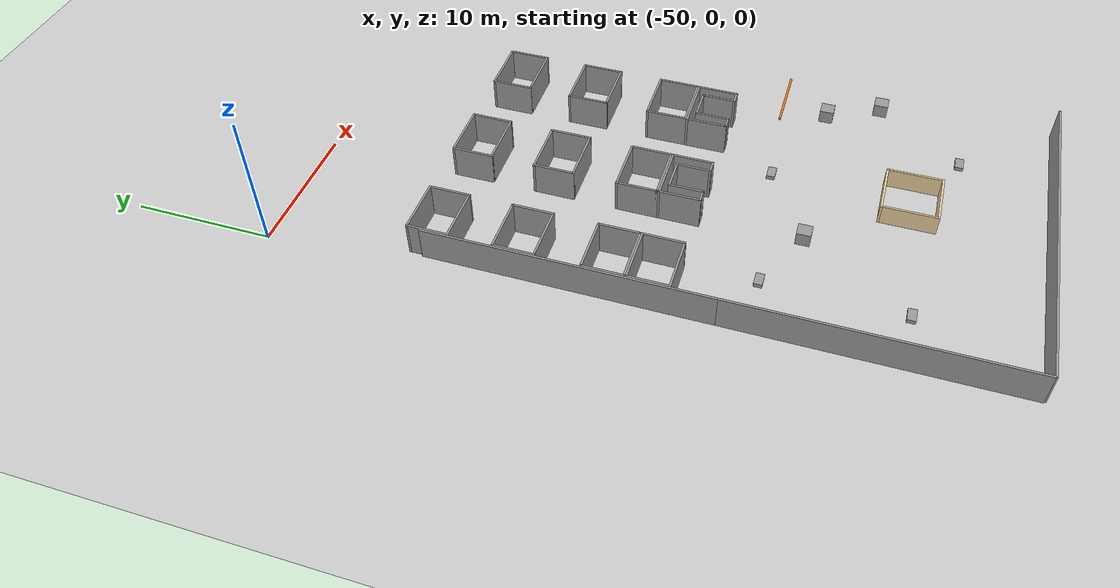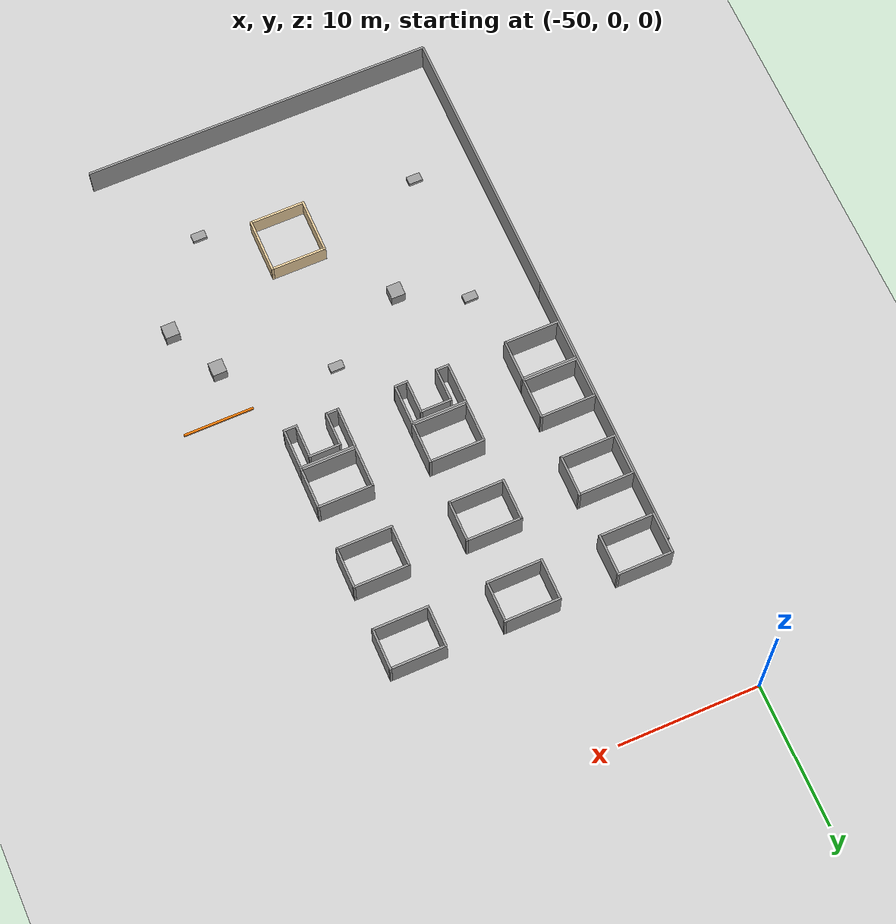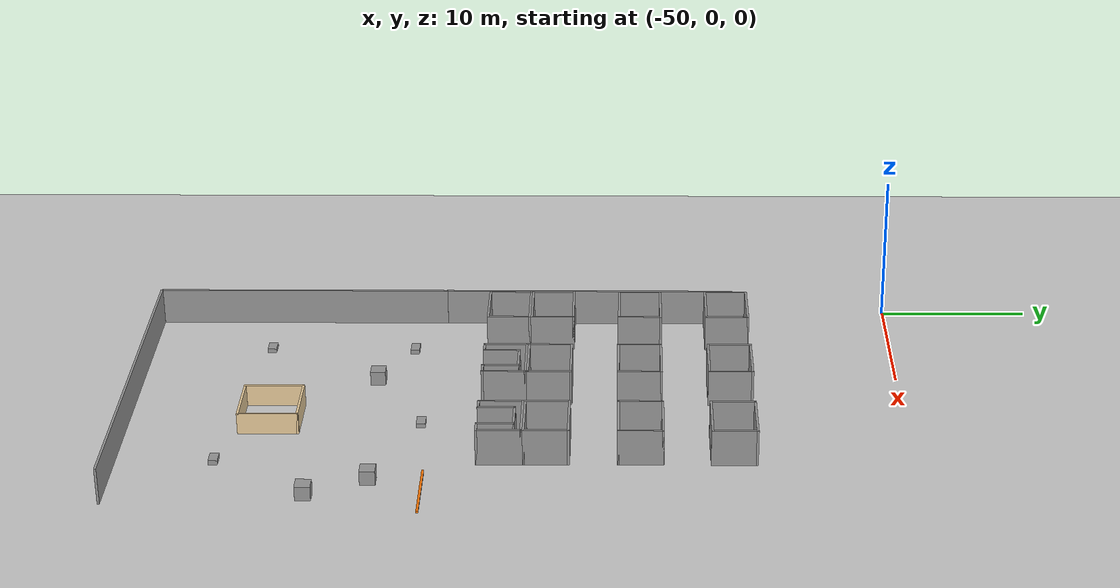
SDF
<sdf version="1.6">
 <world name="default">
  <model name="ground_plane">
   <static>1</static>
   <link name="link">
    <collision name="collision">
     <geometry><plane><normal>0 0 1</normal><size>105 105</size></plane></geometry>
     <surface>
      <contact><collide_bitmask>65535</collide_bitmask></contact>
      <friction><ode><mu>100</mu><mu2>50</mu2></ode></friction>
     </surface>
    </collision>
    <visual name="visual">
     <cast_shadows>0</cast_shadows>
     <geometry><plane><normal>0 0 1</normal><size>105 105</size></plane></geometry>
     <material>
      <script><uri>file://media/materials/scripts/gazebo.material</uri><name>Gazebo/Grey</name></script>
     </material>
    </visual>
   </link>
  </model>
  <model name="wall_v20m">
   <pose>-48.4198 -20.7165 0 0 -0 0</pose>
   <link name="Wall_35">
    <collision name="Wall_35_Collision">
     <geometry><box><size>20 0.15 2.5</size></box></geometry>
     <pose>0 0 1.25 0 -0 0</pose>
    </collision>
    <visual name="Wall_35_Visual">
     <pose>0 0 1.25 0 -0 0</pose>
     <geometry><box><size>20 0.15 2.5</size></box></geometry>
     <material>
      <script><uri>file://media/materials/scripts/gazebo.material</uri><name>Gazebo/Grey</name></script>
      <ambient>1 1 1 1</ambient>
     </material>
     <meta><layer>0</layer></meta>
    </visual>
    <pose>0 -0 0 0 -0 -1.5708</pose>
   </link>
   <static>1</static>
  </model>
  <model name="base3x4_26">
   <pose>-46.3516 -23.2162 0 0 -0 0</pose>
   <link name="Wall_18">
    <collision name="Wall_18_Collision">
     <geometry><box><size>3 0.15 2.5</size></box></geometry>
     <pose>0 0 1.25 0 -0 0</pose>
    </collision>
    <visual name="Wall_18_Visual">
     <pose>0 0 1.25 0 -0 0</pose>
     <geometry><box><size>3 0.15 2.5</size></box></geometry>
     <material>
      <script><uri>file://media/materials/scripts/gazebo.material</uri><name>Gazebo/Grey</name></script>
      <ambient>1 1 1 1</ambient>
     </material>
     <meta><layer>0</layer></meta>
    </visual>
    <pose>-1.925 -0 0 0 -0 -1.5708</pose>
   </link>
   <link name="Wall_19">
    <collision name="Wall_19_Collision">
     <geometry><box><size>4 0.15 2.5</size></box></geometry>
     <pose>0 0 1.25 0 -0 0</pose>
    </collision>
    <visual name="Wall_19_Visual">
     <pose>0 0 1.25 0 -0 0</pose>
     <geometry><box><size>4 0.15 2.5</size></box></geometry>
     <material>
      <script><uri>file://media/materials/scripts/gazebo.material</uri><name>Gazebo/Grey</name></script>
      <ambient>1 1 1 1</ambient>
     </material>
     <meta><layer>0</layer></meta>
    </visual>
    <pose>-0 -1.425 0 0 -0 0</pose>
   </link>
   <link name="Wall_20">
    <collision name="Wall_20_Collision">
     <geometry><box><size>3 0.15 2.5</size></box></geometry>
     <pose>0 0 1.25 0 -0 0</pose>
    </collision>
    <visual name="Wall_20_Visual">
     <pose>0 0 1.25 0 -0 0</pose>
     <geometry><box><size>3 0.15 2.5</size></box></geometry>
     <material>
      <script><uri>file://media/materials/scripts/gazebo.material</uri><name>Gazebo/Grey</name></script>
      <ambient>1 1 1 1</ambient>
     </material>
     <meta><layer>0</layer></meta>
    </visual>
    <pose>1.925 -0 0 0 -0 1.5708</pose>
   </link>
   <link name="Wall_21">
    <collision name="Wall_21_Collision">
     <geometry><box><size>4 0.15 2.5</size></box></geometry>
     <pose>0 0 1.25 0 -0 0</pose>
    </collision>
    <visual name="Wall_21_Visual">
     <pose>0 0 1.25 0 -0 0</pose>
     <geometry><box><size>4 0.15 2.5</size></box></geometry>
     <material>
      <script><uri>file://media/materials/scripts/gazebo.material</uri><name>Gazebo/Grey</name></script>
      <ambient>1 1 1 1</ambient>
     </material>
     <meta><layer>0</layer></meta>
    </visual>
    <pose>-0 1.425 0 0 -0 3.14159</pose>
   </link>
   <static>1</static>
  </model>
  <model name="base3x4_28">
   <pose>-46.3508 -17.215 0 0 -0 0</pose>
   <link name="Wall_18">
    <collision name="Wall_18_Collision">
     <geometry><box><size>3 0.15 2.5</size></box></geometry>
     <pose>0 0 1.25 0 -0 0</pose>
    </collision>
    <visual name="Wall_18_Visual">
     <pose>0 0 1.25 0 -0 0</pose>
     <geometry><box><size>3 0.15 2.5</size></box></geometry>
     <material>
      <script><uri>file://media/materials/scripts/gazebo.material</uri><name>Gazebo/Grey</name></script>
      <ambient>1 1 1 1</ambient>
     </material>
     <meta><layer>0</layer></meta>
    </visual>
    <pose>-1.925 -0 0 0 -0 -1.5708</pose>
   </link>
   <link name="Wall_19">
    <collision name="Wall_19_Collision">
     <geometry><box><size>4 0.15 2.5</size></box></geometry>
     <pose>0 0 1.25 0 -0 0</pose>
    </collision>
    <visual name="Wall_19_Visual">
     <pose>0 0 1.25 0 -0 0</pose>
     <geometry><box><size>4 0.15 2.5</size></box></geometry>
     <material>
      <script><uri>file://media/materials/scripts/gazebo.material</uri><name>Gazebo/Grey</name></script>
      <ambient>1 1 1 1</ambient>
     </material>
     <meta><layer>0</layer></meta>
    </visual>
    <pose>-0 -1.425 0 0 -0 0</pose>
   </link>
   <link name="Wall_20">
    <collision name="Wall_20_Collision">
     <geometry><box><size>3 0.15 2.5</size></box></geometry>
     <pose>0 0 1.25 0 -0 0</pose>
    </collision>
    <visual name="Wall_20_Visual">
     <pose>0 0 1.25 0 -0 0</pose>
     <geometry><box><size>3 0.15 2.5</size></box></geometry>
     <material>
      <script><uri>file://media/materials/scripts/gazebo.material</uri><name>Gazebo/Grey</name></script>
      <ambient>1 1 1 1</ambient>
     </material>
     <meta><layer>0</layer></meta>
    </visual>
    <pose>1.925 -0 0 0 -0 1.5708</pose>
   </link>
   <link name="Wall_21">
    <collision name="Wall_21_Collision">
     <geometry><box><size>4 0.15 2.5</size></box></geometry>
     <pose>0 0 1.25 0 -0 0</pose>
    </collision>
    <visual name="Wall_21_Visual">
     <pose>0 0 1.25 0 -0 0</pose>
     <geometry><box><size>4 0.15 2.5</size></box></geometry>
     <material>
      <script><uri>file://media/materials/scripts/gazebo.material</uri><name>Gazebo/Grey</name></script>
      <ambient>1 1 1 1</ambient>
     </material>
     <meta><layer>0</layer></meta>
    </visual>
    <pose>-0 1.425 0 0 -0 3.14159</pose>
   </link>
   <static>1</static>
  </model>
  <model name="base3x4_34">
   <pose>-38.3558 -23.2346 0 0 -0 0</pose>
   <link name="Wall_18">
    <collision name="Wall_18_Collision">
     <geometry><box><size>3 0.15 2.5</size></box></geometry>
     <pose>0 0 1.25 0 -0 0</pose>
    </collision>
    <visual name="Wall_18_Visual">
     <pose>0 0 1.25 0 -0 0</pose>
     <geometry><box><size>3 0.15 2.5</size></box></geometry>
     <material>
      <script><uri>file://media/materials/scripts/gazebo.material</uri><name>Gazebo/Grey</name></script>
      <ambient>1 1 1 1</ambient>
     </material>
     <meta><layer>0</layer></meta>
    </visual>
    <pose>-1.925 -0 0 0 -0 -1.5708</pose>
   </link>
   <link name="Wall_19">
    <collision name="Wall_19_Collision">
     <geometry><box><size>4 0.15 2.5</size></box></geometry>
     <pose>0 0 1.25 0 -0 0</pose>
    </collision>
    <visual name="Wall_19_Visual">
     <pose>0 0 1.25 0 -0 0</pose>
     <geometry><box><size>4 0.15 2.5</size></box></geometry>
     <material>
      <script><uri>file://media/materials/scripts/gazebo.material</uri><name>Gazebo/Grey</name></script>
      <ambient>1 1 1 1</ambient>
     </material>
     <meta><layer>0</layer></meta>
    </visual>
    <pose>-0 -1.425 0 0 -0 0</pose>
   </link>
   <link name="Wall_20">
    <collision name="Wall_20_Collision">
     <geometry><box><size>3 0.15 2.5</size></box></geometry>
     <pose>0 0 1.25 0 -0 0</pose>
    </collision>
    <visual name="Wall_20_Visual">
     <pose>0 0 1.25 0 -0 0</pose>
     <geometry><box><size>3 0.15 2.5</size></box></geometry>
     <material>
      <script><uri>file://media/materials/scripts/gazebo.material</uri><name>Gazebo/Grey</name></script>
      <ambient>1 1 1 1</ambient>
     </material>
     <meta><layer>0</layer></meta>
    </visual>
    <pose>1.925 -0 0 0 -0 1.5708</pose>
   </link>
   <link name="Wall_21">
    <collision name="Wall_21_Collision">
     <geometry><box><size>4 0.15 2.5</size></box></geometry>
     <pose>0 0 1.25 0 -0 0</pose>
    </collision>
    <visual name="Wall_21_Visual">
     <pose>0 0 1.25 0 -0 0</pose>
     <geometry><box><size>4 0.15 2.5</size></box></geometry>
     <material>
      <script><uri>file://media/materials/scripts/gazebo.material</uri><name>Gazebo/Grey</name></script>
      <ambient>1 1 1 1</ambient>
     </material>
     <meta><layer>0</layer></meta>
    </visual>
    <pose>-0 1.425 0 0 -0 3.14159</pose>
   </link>
   <static>1</static>
  </model>
  <model name="base3x4_36">
   <pose>-38.357 -17.2543 0 0 -0 0</pose>
   <link name="Wall_18">
    <collision name="Wall_18_Collision">
     <geometry><box><size>3 0.15 2.5</size></box></geometry>
     <pose>0 0 1.25 0 -0 0</pose>
    </collision>
    <visual name="Wall_18_Visual">
     <pose>0 0 1.25 0 -0 0</pose>
     <geometry><box><size>3 0.15 2.5</size></box></geometry>
     <material>
      <script><uri>file://media/materials/scripts/gazebo.material</uri><name>Gazebo/Grey</name></script>
      <ambient>1 1 1 1</ambient>
     </material>
     <meta><layer>0</layer></meta>
    </visual>
    <pose>-1.925 -0 0 0 -0 -1.5708</pose>
   </link>
   <link name="Wall_19">
    <collision name="Wall_19_Collision">
     <geometry><box><size>4 0.15 2.5</size></box></geometry>
     <pose>0 0 1.25 0 -0 0</pose>
    </collision>
    <visual name="Wall_19_Visual">
     <pose>0 0 1.25 0 -0 0</pose>
     <geometry><box><size>4 0.15 2.5</size></box></geometry>
     <material>
      <script><uri>file://media/materials/scripts/gazebo.material</uri><name>Gazebo/Grey</name></script>
      <ambient>1 1 1 1</ambient>
     </material>
     <meta><layer>0</layer></meta>
    </visual>
    <pose>-0 -1.425 0 0 -0 0</pose>
   </link>
   <link name="Wall_20">
    <collision name="Wall_20_Collision">
     <geometry><box><size>3 0.15 2.5</size></box></geometry>
     <pose>0 0 1.25 0 -0 0</pose>
    </collision>
    <visual name="Wall_20_Visual">
     <pose>0 0 1.25 0 -0 0</pose>
     <geometry><box><size>3 0.15 2.5</size></box></geometry>
     <material>
      <script><uri>file://media/materials/scripts/gazebo.material</uri><name>Gazebo/Grey</name></script>
      <ambient>1 1 1 1</ambient>
     </material>
     <meta><layer>0</layer></meta>
    </visual>
    <pose>1.925 -0 0 0 -0 1.5708</pose>
   </link>
   <link name="Wall_21">
    <collision name="Wall_21_Collision">
     <geometry><box><size>4 0.15 2.5</size></box></geometry>
     <pose>0 0 1.25 0 -0 0</pose>
    </collision>
    <visual name="Wall_21_Visual">
     <pose>0 0 1.25 0 -0 0</pose>
     <geometry><box><size>4 0.15 2.5</size></box></geometry>
     <material>
      <script><uri>file://media/materials/scripts/gazebo.material</uri><name>Gazebo/Grey</name></script>
      <ambient>1 1 1 1</ambient>
     </material>
     <meta><layer>0</layer></meta>
    </visual>
    <pose>-0 1.425 0 0 -0 3.14159</pose>
   </link>
   <static>1</static>
  </model>
  <model name="base3x4_31">
   <pose>-30.4046 -23.2308 0 0 -0 0</pose>
   <link name="Wall_18">
    <collision name="Wall_18_Collision">
     <geometry><box><size>3 0.15 2.5</size></box></geometry>
     <pose>0 0 1.25 0 -0 0</pose>
    </collision>
    <visual name="Wall_18_Visual">
     <pose>0 0 1.25 0 -0 0</pose>
     <geometry><box><size>3 0.15 2.5</size></box></geometry>
     <material>
      <script><uri>file://media/materials/scripts/gazebo.material</uri><name>Gazebo/Grey</name></script>
      <ambient>1 1 1 1</ambient>
     </material>
     <meta><layer>0</layer></meta>
    </visual>
    <pose>-1.925 -0 0 0 -0 -1.5708</pose>
   </link>
   <link name="Wall_19">
    <collision name="Wall_19_Collision">
     <geometry><box><size>4 0.15 2.5</size></box></geometry>
     <pose>0 0 1.25 0 -0 0</pose>
    </collision>
    <visual name="Wall_19_Visual">
     <pose>0 0 1.25 0 -0 0</pose>
     <geometry><box><size>4 0.15 2.5</size></box></geometry>
     <material>
      <script><uri>file://media/materials/scripts/gazebo.material</uri><name>Gazebo/Grey</name></script>
      <ambient>1 1 1 1</ambient>
     </material>
     <meta><layer>0</layer></meta>
    </visual>
    <pose>-0 -1.425 0 0 -0 0</pose>
   </link>
   <link name="Wall_20">
    <collision name="Wall_20_Collision">
     <geometry><box><size>3 0.15 2.5</size></box></geometry>
     <pose>0 0 1.25 0 -0 0</pose>
    </collision>
    <visual name="Wall_20_Visual">
     <pose>0 0 1.25 0 -0 0</pose>
     <geometry><box><size>3 0.15 2.5</size></box></geometry>
     <material>
      <script><uri>file://media/materials/scripts/gazebo.material</uri><name>Gazebo/Grey</name></script>
      <ambient>1 1 1 1</ambient>
     </material>
     <meta><layer>0</layer></meta>
    </visual>
    <pose>1.925 -0 0 0 -0 1.5708</pose>
   </link>
   <link name="Wall_21">
    <collision name="Wall_21_Collision">
     <geometry><box><size>4 0.15 2.5</size></box></geometry>
     <pose>0 0 1.25 0 -0 0</pose>
    </collision>
    <visual name="Wall_21_Visual">
     <pose>0 0 1.25 0 -0 0</pose>
     <geometry><box><size>4 0.15 2.5</size></box></geometry>
     <material>
      <script><uri>file://media/materials/scripts/gazebo.material</uri><name>Gazebo/Grey</name></script>
      <ambient>1 1 1 1</ambient>
     </material>
     <meta><layer>0</layer></meta>
    </visual>
    <pose>-0 1.425 0 0 -0 3.14159</pose>
   </link>
   <static>1</static>
  </model>
  <model name="base3x4_33">
   <pose>-30.4092 -17.2319 0 0 -0 0</pose>
   <link name="Wall_18">
    <collision name="Wall_18_Collision">
     <geometry><box><size>3 0.15 2.5</size></box></geometry>
     <pose>0 0 1.25 0 -0 0</pose>
    </collision>
    <visual name="Wall_18_Visual">
     <pose>0 0 1.25 0 -0 0</pose>
     <geometry><box><size>3 0.15 2.5</size></box></geometry>
     <material>
      <script><uri>file://media/materials/scripts/gazebo.material</uri><name>Gazebo/Grey</name></script>
      <ambient>1 1 1 1</ambient>
     </material>
     <meta><layer>0</layer></meta>
    </visual>
    <pose>-1.925 -0 0 0 -0 -1.5708</pose>
   </link>
   <link name="Wall_19">
    <collision name="Wall_19_Collision">
     <geometry><box><size>4 0.15 2.5</size></box></geometry>
     <pose>0 0 1.25 0 -0 0</pose>
    </collision>
    <visual name="Wall_19_Visual">
     <pose>0 0 1.25 0 -0 0</pose>
     <geometry><box><size>4 0.15 2.5</size></box></geometry>
     <material>
      <script><uri>file://media/materials/scripts/gazebo.material</uri><name>Gazebo/Grey</name></script>
      <ambient>1 1 1 1</ambient>
     </material>
     <meta><layer>0</layer></meta>
    </visual>
    <pose>-0 -1.425 0 0 -0 0</pose>
   </link>
   <link name="Wall_20">
    <collision name="Wall_20_Collision">
     <geometry><box><size>3 0.15 2.5</size></box></geometry>
     <pose>0 0 1.25 0 -0 0</pose>
    </collision>
    <visual name="Wall_20_Visual">
     <pose>0 0 1.25 0 -0 0</pose>
     <geometry><box><size>3 0.15 2.5</size></box></geometry>
     <material>
      <script><uri>file://media/materials/scripts/gazebo.material</uri><name>Gazebo/Grey</name></script>
      <ambient>1 1 1 1</ambient>
     </material>
     <meta><layer>0</layer></meta>
    </visual>
    <pose>1.925 -0 0 0 -0 1.5708</pose>
   </link>
   <link name="Wall_21">
    <collision name="Wall_21_Collision">
     <geometry><box><size>4 0.15 2.5</size></box></geometry>
     <pose>0 0 1.25 0 -0 0</pose>
    </collision>
    <visual name="Wall_21_Visual">
     <pose>0 0 1.25 0 -0 0</pose>
     <geometry><box><size>4 0.15 2.5</size></box></geometry>
     <material>
      <script><uri>file://media/materials/scripts/gazebo.material</uri><name>Gazebo/Grey</name></script>
      <ambient>1 1 1 1</ambient>
     </material>
     <meta><layer>0</layer></meta>
    </visual>
    <pose>-0 1.425 0 0 -0 3.14159</pose>
   </link>
   <static>1</static>
  </model>
  <model name="base3x4_39">
   <pose>-46.3493 -11.2283 0 0 -0 0</pose>
   <link name="Wall_18">
    <collision name="Wall_18_Collision">
     <geometry><box><size>3 0.15 2.5</size></box></geometry>
     <pose>0 0 1.25 0 -0 0</pose>
    </collision>
    <visual name="Wall_18_Visual">
     <pose>0 0 1.25 0 -0 0</pose>
     <geometry><box><size>3 0.15 2.5</size></box></geometry>
     <material>
      <script><uri>file://media/materials/scripts/gazebo.material</uri><name>Gazebo/Grey</name></script>
      <ambient>1 1 1 1</ambient>
     </material>
     <meta><layer>0</layer></meta>
    </visual>
    <pose>-1.925 -0 0 0 -0 -1.5708</pose>
   </link>
   <link name="Wall_19">
    <collision name="Wall_19_Collision">
     <geometry><box><size>4 0.15 2.5</size></box></geometry>
     <pose>0 0 1.25 0 -0 0</pose>
    </collision>
    <visual name="Wall_19_Visual">
     <pose>0 0 1.25 0 -0 0</pose>
     <geometry><box><size>4 0.15 2.5</size></box></geometry>
     <material>
      <script><uri>file://media/materials/scripts/gazebo.material</uri><name>Gazebo/Grey</name></script>
      <ambient>1 1 1 1</ambient>
     </material>
     <meta><layer>0</layer></meta>
    </visual>
    <pose>-0 -1.425 0 0 -0 0</pose>
   </link>
   <link name="Wall_20">
    <collision name="Wall_20_Collision">
     <geometry><box><size>3 0.15 2.5</size></box></geometry>
     <pose>0 0 1.25 0 -0 0</pose>
    </collision>
    <visual name="Wall_20_Visual">
     <pose>0 0 1.25 0 -0 0</pose>
     <geometry><box><size>3 0.15 2.5</size></box></geometry>
     <material>
      <script><uri>file://media/materials/scripts/gazebo.material</uri><name>Gazebo/Grey</name></script>
      <ambient>1 1 1 1</ambient>
     </material>
     <meta><layer>0</layer></meta>
    </visual>
    <pose>1.925 -0 0 0 -0 1.5708</pose>
   </link>
   <link name="Wall_21">
    <collision name="Wall_21_Collision">
     <geometry><box><size>4 0.15 2.5</size></box></geometry>
     <pose>0 0 1.25 0 -0 0</pose>
    </collision>
    <visual name="Wall_21_Visual">
     <pose>0 0 1.25 0 -0 0</pose>
     <geometry><box><size>4 0.15 2.5</size></box></geometry>
     <material>
      <script><uri>file://media/materials/scripts/gazebo.material</uri><name>Gazebo/Grey</name></script>
      <ambient>1 1 1 1</ambient>
     </material>
     <meta><layer>0</layer></meta>
    </visual>
    <pose>-0 1.425 0 0 -0 3.14159</pose>
   </link>
   <static>1</static>
  </model>
  <model name="base3x4_59">
   <pose>-38.3726 -11.2428 0 0 -0 0</pose>
   <link name="Wall_18">
    <collision name="Wall_18_Collision">
     <geometry><box><size>3 0.15 2.5</size></box></geometry>
     <pose>0 0 1.25 0 -0 0</pose>
    </collision>
    <visual name="Wall_18_Visual">
     <pose>0 0 1.25 0 -0 0</pose>
     <geometry><box><size>3 0.15 2.5</size></box></geometry>
     <material>
      <script><uri>file://media/materials/scripts/gazebo.material</uri><name>Gazebo/Grey</name></script>
      <ambient>1 1 1 1</ambient>
     </material>
     <meta><layer>0</layer></meta>
    </visual>
    <pose>-1.925 -0 0 0 -0 -1.5708</pose>
   </link>
   <link name="Wall_19">
    <collision name="Wall_19_Collision">
     <geometry><box><size>4 0.15 2.5</size></box></geometry>
     <pose>0 0 1.25 0 -0 0</pose>
    </collision>
    <visual name="Wall_19_Visual">
     <pose>0 0 1.25 0 -0 0</pose>
     <geometry><box><size>4 0.15 2.5</size></box></geometry>
     <material>
      <script><uri>file://media/materials/scripts/gazebo.material</uri><name>Gazebo/Grey</name></script>
      <ambient>1 1 1 1</ambient>
     </material>
     <meta><layer>0</layer></meta>
    </visual>
    <pose>-0 -1.425 0 0 -0 0</pose>
   </link>
   <link name="Wall_20">
    <collision name="Wall_20_Collision">
     <geometry><box><size>3 0.15 2.5</size></box></geometry>
     <pose>0 0 1.25 0 -0 0</pose>
    </collision>
    <visual name="Wall_20_Visual">
     <pose>0 0 1.25 0 -0 0</pose>
     <geometry><box><size>3 0.15 2.5</size></box></geometry>
     <material>
      <script><uri>file://media/materials/scripts/gazebo.material</uri><name>Gazebo/Grey</name></script>
      <ambient>1 1 1 1</ambient>
     </material>
     <meta><layer>0</layer></meta>
    </visual>
    <pose>1.925 -0 0 0 -0 1.5708</pose>
   </link>
   <link name="Wall_21">
    <collision name="Wall_21_Collision">
     <geometry><box><size>4 0.15 2.5</size></box></geometry>
     <pose>0 0 1.25 0 -0 0</pose>
    </collision>
    <visual name="Wall_21_Visual">
     <pose>0 0 1.25 0 -0 0</pose>
     <geometry><box><size>4 0.15 2.5</size></box></geometry>
     <material>
      <script><uri>file://media/materials/scripts/gazebo.material</uri><name>Gazebo/Grey</name></script>
      <ambient>1 1 1 1</ambient>
     </material>
     <meta><layer>0</layer></meta>
    </visual>
    <pose>-0 1.425 0 0 -0 3.14159</pose>
   </link>
   <static>1</static>
  </model>
  <model name="base3x4_0">
   <pose>-30.4026 -11.2715 0 0 -0 0</pose>
   <link name="Wall_18">
    <collision name="Wall_18_Collision">
     <geometry><box><size>3 0.15 2.5</size></box></geometry>
     <pose>0 0 1.25 0 -0 0</pose>
    </collision>
    <visual name="Wall_18_Visual">
     <pose>0 0 1.25 0 -0 0</pose>
     <geometry><box><size>3 0.15 2.5</size></box></geometry>
     <material>
      <script><uri>file://media/materials/scripts/gazebo.material</uri><name>Gazebo/Grey</name></script>
      <ambient>1 1 1 1</ambient>
     </material>
     <meta><layer>0</layer></meta>
    </visual>
    <pose>-1.925 -0 0 0 -0 -1.5708</pose>
   </link>
   <link name="Wall_19">
    <collision name="Wall_19_Collision">
     <geometry><box><size>4 0.15 2.5</size></box></geometry>
     <pose>0 0 1.25 0 -0 0</pose>
    </collision>
    <visual name="Wall_19_Visual">
     <pose>0 0 1.25 0 -0 0</pose>
     <geometry><box><size>4 0.15 2.5</size></box></geometry>
     <material>
      <script><uri>file://media/materials/scripts/gazebo.material</uri><name>Gazebo/Grey</name></script>
      <ambient>1 1 1 1</ambient>
     </material>
     <meta><layer>0</layer></meta>
    </visual>
    <pose>-0 -1.425 0 0 -0 0</pose>
   </link>
   <link name="Wall_20">
    <collision name="Wall_20_Collision">
     <geometry><box><size>3 0.15 2.5</size></box></geometry>
     <pose>0 0 1.25 0 -0 0</pose>
    </collision>
    <visual name="Wall_20_Visual">
     <pose>0 0 1.25 0 -0 0</pose>
     <geometry><box><size>3 0.15 2.5</size></box></geometry>
     <material>
      <script><uri>file://media/materials/scripts/gazebo.material</uri><name>Gazebo/Grey</name></script>
      <ambient>1 1 1 1</ambient>
     </material>
     <meta><layer>0</layer></meta>
    </visual>
    <pose>1.925 -0 0 0 -0 1.5708</pose>
   </link>
   <link name="Wall_21">
    <collision name="Wall_21_Collision">
     <geometry><box><size>4 0.15 2.5</size></box></geometry>
     <pose>0 0 1.25 0 -0 0</pose>
    </collision>
    <visual name="Wall_21_Visual">
     <pose>0 0 1.25 0 -0 0</pose>
     <geometry><box><size>4 0.15 2.5</size></box></geometry>
     <material>
      <script><uri>file://media/materials/scripts/gazebo.material</uri><name>Gazebo/Grey</name></script>
      <ambient>1 1 1 1</ambient>
     </material>
     <meta><layer>0</layer></meta>
    </visual>
    <pose>-0 1.425 0 0 -0 3.14159</pose>
   </link>
   <static>1</static>
  </model>
  <model name="unit_box_2">
   <pose>-24.3587 -38.1587 0.499902 0.000196 0 -2e-06</pose>
   <link name="link">
    <inertial>
     <mass>1</mass>
     <inertia>
      <ixx>0.166667</ixx>
      <ixy>0</ixy>
      <ixz>0</ixz>
      <iyy>0.166667</iyy>
      <iyz>0</iyz>
      <izz>0.166667</izz>
     </inertia>
    </inertial>
    <collision name="collision"><geometry><box><size>1 1 1</size></box></geometry></collision>
    <visual name="visual">
     <geometry><box><size>1 1 1</size></box></geometry>
     <material>
      <script><name>Gazebo/Grey</name><uri>file://media/materials/scripts/gazebo.material</uri></script>
     </material>
    </visual>
   </link>
  </model>
  <model name="wall_25m_1">
   <pose>-35.9126 -50.7151 0 0 -0 0</pose>
   <link name="Wall_28">
    <collision name="Wall_28_Collision">
     <geometry><box><size>25 0.15 2.5</size></box></geometry>
     <pose>0 0 1.25 0 -0 0</pose>
    </collision>
    <visual name="Wall_28_Visual">
     <pose>0 0 1.25 0 -0 0</pose>
     <geometry><box><size>25 0.15 2.5</size></box></geometry>
     <material>
      <script><uri>file://media/materials/scripts/gazebo.material</uri><name>Gazebo/Grey</name></script>
      <ambient>1 1 1 1</ambient>
     </material>
     <meta><layer>0</layer></meta>
    </visual>
   </link>
   <static>1</static>
  </model>
  <model name="wall_v20m_7">
   <pose>-48.4151 -40.6667 0 0 -0 0</pose>
   <link name="Wall_35">
    <collision name="Wall_35_Collision">
     <geometry><box><size>20 0.15 2.5</size></box></geometry>
     <pose>0 0 1.25 0 -0 0</pose>
    </collision>
    <visual name="Wall_35_Visual">
     <pose>0 0 1.25 0 -0 0</pose>
     <geometry><box><size>20 0.15 2.5</size></box></geometry>
     <material>
      <script><uri>file://media/materials/scripts/gazebo.material</uri><name>Gazebo/Grey</name></script>
      <ambient>1 1 1 1</ambient>
     </material>
     <meta><layer>0</layer></meta>
    </visual>
    <pose>0 -0 0 0 -0 -1.5708</pose>
   </link>
   <static>1</static>
  </model>
  <model name="box4x4x1.5_0">
   <pose>-34.2755 -41.3514 0 0 -0 0</pose>
   <link name="Wall_5">
    <collision name="Wall_5_Collision">
     <geometry><box><size>4 0.15 1.5</size></box></geometry>
     <pose>0 0 0.75 0 -0 0</pose>
    </collision>
    <visual name="Wall_5_Visual">
     <pose>0 0 0.75 0 -0 0</pose>
     <geometry><box><size>4 0.15 1.5</size></box></geometry>
     <material>
      <script><uri>file://media/materials/scripts/gazebo.material</uri><name>Gazebo/Grey</name></script>
      <ambient>0.921569 0.807843 0.615686 1</ambient>
     </material>
     <meta><layer>0</layer></meta>
    </visual>
    <pose>-1.925 -0 0 0 -0 -1.5708</pose>
   </link>
   <link name="Wall_6">
    <collision name="Wall_6_Collision">
     <geometry><box><size>4 0.15 1.5</size></box></geometry>
     <pose>0 0 0.75 0 -0 0</pose>
    </collision>
    <visual name="Wall_6_Visual">
     <pose>0 0 0.75 0 -0 0</pose>
     <geometry><box><size>4 0.15 1.5</size></box></geometry>
     <material>
      <script><uri>file://media/materials/scripts/gazebo.material</uri><name>Gazebo/Grey</name></script>
      <ambient>0.921569 0.807843 0.615686 1</ambient>
     </material>
     <meta><layer>0</layer></meta>
    </visual>
    <pose>0 -1.925 0 0 -0 0</pose>
   </link>
   <link name="Wall_7">
    <collision name="Wall_7_Collision">
     <geometry><box><size>4 0.15 1.5</size></box></geometry>
     <pose>0 0 0.75 0 -0 0</pose>
    </collision>
    <visual name="Wall_7_Visual">
     <pose>0 0 0.75 0 -0 0</pose>
     <geometry><box><size>4 0.15 1.5</size></box></geometry>
     <material>
      <script><uri>file://media/materials/scripts/gazebo.material</uri><name>Gazebo/Grey</name></script>
      <ambient>0.921569 0.807843 0.615686 1</ambient>
     </material>
     <meta><layer>0</layer></meta>
    </visual>
    <pose>1.925 -0 0 0 -0 1.5708</pose>
   </link>
   <link name="Wall_8">
    <collision name="Wall_8_Collision">
     <geometry><box><size>4 0.15 1.5</size></box></geometry>
     <pose>0 0 0.75 0 -0 0</pose>
    </collision>
    <visual name="Wall_8_Visual">
     <pose>0 0 0.75 0 -0 0</pose>
     <geometry><box><size>4 0.15 1.5</size></box></geometry>
     <material>
      <script><uri>file://media/materials/scripts/gazebo.material</uri><name>Gazebo/Grey</name></script>
      <ambient>0.921569 0.807843 0.615686 1</ambient>
     </material>
     <meta><layer>0</layer></meta>
    </visual>
    <pose>0 1.925 0 0 -0 3.14159</pose>
   </link>
   <static>1</static>
  </model>
  <model name="base3x4">
   <pose>-46.3496 -26.2095 0 0 -0 0</pose>
   <link name="Wall_18">
    <collision name="Wall_18_Collision">
     <geometry><box><size>3 0.15 2.5</size></box></geometry>
     <pose>0 0 1.25 0 -0 0</pose>
    </collision>
    <visual name="Wall_18_Visual">
     <pose>0 0 1.25 0 -0 0</pose>
     <geometry><box><size>3 0.15 2.5</size></box></geometry>
     <material>
      <script><uri>file://media/materials/scripts/gazebo.material</uri><name>Gazebo/Grey</name></script>
      <ambient>1 1 1 1</ambient>
     </material>
     <meta><layer>0</layer></meta>
    </visual>
    <pose>-1.925 -0 0 0 -0 -1.5708</pose>
   </link>
   <link name="Wall_19">
    <collision name="Wall_19_Collision">
     <geometry><box><size>4 0.15 2.5</size></box></geometry>
     <pose>0 0 1.25 0 -0 0</pose>
    </collision>
    <visual name="Wall_19_Visual">
     <pose>0 0 1.25 0 -0 0</pose>
     <geometry><box><size>4 0.15 2.5</size></box></geometry>
     <material>
      <script><uri>file://media/materials/scripts/gazebo.material</uri><name>Gazebo/Grey</name></script>
      <ambient>1 1 1 1</ambient>
     </material>
     <meta><layer>0</layer></meta>
    </visual>
    <pose>-0 -1.425 0 0 -0 0</pose>
   </link>
   <link name="Wall_20">
    <collision name="Wall_20_Collision">
     <geometry><box><size>3 0.15 2.5</size></box></geometry>
     <pose>0 0 1.25 0 -0 0</pose>
    </collision>
    <visual name="Wall_20_Visual">
     <pose>0 0 1.25 0 -0 0</pose>
     <geometry><box><size>3 0.15 2.5</size></box></geometry>
     <material>
      <script><uri>file://media/materials/scripts/gazebo.material</uri><name>Gazebo/Grey</name></script>
      <ambient>1 1 1 1</ambient>
     </material>
     <meta><layer>0</layer></meta>
    </visual>
    <pose>1.925 -0 0 0 -0 1.5708</pose>
   </link>
   <link name="Wall_21">
    <collision name="Wall_21_Collision">
     <geometry><box><size>4 0.15 2.5</size></box></geometry>
     <pose>0 0 1.25 0 -0 0</pose>
    </collision>
    <visual name="Wall_21_Visual">
     <pose>0 0 1.25 0 -0 0</pose>
     <geometry><box><size>4 0.15 2.5</size></box></geometry>
     <material>
      <script><uri>file://media/materials/scripts/gazebo.material</uri><name>Gazebo/Grey</name></script>
      <ambient>1 1 1 1</ambient>
     </material>
     <meta><layer>0</layer></meta>
    </visual>
    <pose>-0 1.425 0 0 -0 3.14159</pose>
   </link>
   <static>1</static>
  </model>
  <model name="box_u_v4X3X2.5_2">
   <pose>-38.3538 -26.2285 0 0 -0 0</pose>
   <link name="Wall_30">
    <collision name="Wall_30_Collision">
     <geometry><box><size>3 0.15 2.5</size></box></geometry>
     <pose>0 0 1.25 0 -0 0</pose>
    </collision>
    <visual name="Wall_30_Visual">
     <pose>0 0 1.25 0 -0 0</pose>
     <geometry><box><size>3 0.15 2.5</size></box></geometry>
     <material>
      <script><uri>file://media/materials/scripts/gazebo.material</uri><name>Gazebo/Grey</name></script>
      <ambient>1 1 1 1</ambient>
     </material>
     <meta><layer>0</layer></meta>
    </visual>
    <pose>-1.925 0 0 0 -0 -1.5708</pose>
   </link>
   <link name="Wall_32">
    <collision name="Wall_32_Collision">
     <geometry><box><size>4 0.15 2.5</size></box></geometry>
     <pose>0 0 1.25 0 -0 0</pose>
    </collision>
    <visual name="Wall_32_Visual">
     <pose>0 0 1.25 0 -0 0</pose>
     <geometry><box><size>4 0.15 2.5</size></box></geometry>
     <material>
      <script><uri>file://media/materials/scripts/gazebo.material</uri><name>Gazebo/Grey</name></script>
      <ambient>1 1 1 1</ambient>
     </material>
     <meta><layer>0</layer></meta>
    </visual>
    <pose>0 1.425 0 0 -0 0</pose>
   </link>
   <link name="Wall_33">
    <collision name="Wall_33_Collision">
     <geometry><box><size>3 0.15 2.5</size></box></geometry>
     <pose>0 0 1.25 0 -0 0</pose>
    </collision>
    <visual name="Wall_33_Visual">
     <pose>0 0 1.25 0 -0 0</pose>
     <geometry><box><size>3 0.15 2.5</size></box></geometry>
     <material>
      <script><uri>file://media/materials/scripts/gazebo.material</uri><name>Gazebo/Grey</name></script>
      <ambient>1 1 1 1</ambient>
     </material>
     <meta><layer>0</layer></meta>
    </visual>
    <pose>1.925 0 0 0 -0 -1.5708</pose>
   </link>
   <link name="Wall_34">
    <collision name="Wall_34_Collision">
     <geometry><box><size>1 0.15 2.5</size></box></geometry>
     <pose>0 0 1.25 0 -0 0</pose>
    </collision>
    <visual name="Wall_34_Visual">
     <pose>0 0 1.25 0 -0 0</pose>
     <geometry><box><size>1 0.15 2.5</size></box></geometry>
     <material>
      <script><uri>file://media/materials/scripts/gazebo.material</uri><name>Gazebo/Grey</name></script>
      <ambient>1 1 1 1</ambient>
     </material>
     <meta><layer>0</layer></meta>
    </visual>
    <pose>1.5 -1.425 0 0 -0 3.14159</pose>
   </link>
   <link name="Wall_35">
    <collision name="Wall_35_Collision">
     <geometry><box><size>2.5 0.15 2.5</size></box></geometry>
     <pose>0 0 1.25 0 -0 0</pose>
    </collision>
    <visual name="Wall_35_Visual">
     <pose>0 0 1.25 0 -0 0</pose>
     <geometry><box><size>2.5 0.15 2.5</size></box></geometry>
     <material>
      <script><uri>file://media/materials/scripts/gazebo.material</uri><name>Gazebo/Grey</name></script>
      <ambient>1 1 1 1</ambient>
     </material>
     <meta><layer>0</layer></meta>
    </visual>
    <pose>1.075 -0.25 0 0 -0 1.5708</pose>
   </link>
   <link name="Wall_37">
    <collision name="Wall_37_Collision">
     <geometry><box><size>1 0.15 2.5</size></box></geometry>
     <pose>0 0 1.25 0 -0 0</pose>
    </collision>
    <visual name="Wall_37_Visual">
     <pose>0 0 1.25 0 -0 0</pose>
     <geometry><box><size>1 0.15 2.5</size></box></geometry>
     <material>
      <script><uri>file://media/materials/scripts/gazebo.material</uri><name>Gazebo/Grey</name></script>
      <ambient>1 1 1 1</ambient>
     </material>
     <meta><layer>0</layer></meta>
    </visual>
    <pose>-1.5 -1.425 0 0 -0 0</pose>
   </link>
   <link name="Wall_38">
    <collision name="Wall_38_Collision">
     <geometry><box><size>2.5 0.15 2.5</size></box></geometry>
     <pose>0 0 1.25 0 -0 0</pose>
    </collision>
    <visual name="Wall_38_Visual">
     <pose>0 0 1.25 0 -0 0</pose>
     <geometry><box><size>2.5 0.15 2.5</size></box></geometry>
     <material>
      <script><uri>file://media/materials/scripts/gazebo.material</uri><name>Gazebo/Grey</name></script>
      <ambient>1 1 1 1</ambient>
     </material>
     <meta><layer>0</layer></meta>
    </visual>
    <pose>-1.075 -0.25 0 0 -0 1.5708</pose>
   </link>
   <link name="Wall_39">
    <collision name="Wall_39_Collision">
     <geometry><box><size>2.3 0.15 2.5</size></box></geometry>
     <pose>0 0 1.25 0 -0 0</pose>
    </collision>
    <visual name="Wall_39_Visual">
     <pose>0 0 1.25 0 -0 0</pose>
     <geometry><box><size>2.3 0.15 2.5</size></box></geometry>
     <material>
      <script><uri>file://media/materials/scripts/gazebo.material</uri><name>Gazebo/Grey</name></script>
      <ambient>1 1 1 1</ambient>
     </material>
     <meta><layer>0</layer></meta>
    </visual>
    <pose>0 0.925 0 0 -0 0</pose>
   </link>
   <static>1</static>
  </model>
  <model name="box_u_v4X3X2.5_1">
   <pose>-30.407 -26.2292 0 0 -0 0</pose>
   <link name="Wall_30">
    <collision name="Wall_30_Collision">
     <geometry><box><size>3 0.15 2.5</size></box></geometry>
     <pose>0 0 1.25 0 -0 0</pose>
    </collision>
    <visual name="Wall_30_Visual">
     <pose>0 0 1.25 0 -0 0</pose>
     <geometry><box><size>3 0.15 2.5</size></box></geometry>
     <material>
      <script><uri>file://media/materials/scripts/gazebo.material</uri><name>Gazebo/Grey</name></script>
      <ambient>1 1 1 1</ambient>
     </material>
     <meta><layer>0</layer></meta>
    </visual>
    <pose>-1.925 0 0 0 -0 -1.5708</pose>
   </link>
   <link name="Wall_32">
    <collision name="Wall_32_Collision">
     <geometry><box><size>4 0.15 2.5</size></box></geometry>
     <pose>0 0 1.25 0 -0 0</pose>
    </collision>
    <visual name="Wall_32_Visual">
     <pose>0 0 1.25 0 -0 0</pose>
     <geometry><box><size>4 0.15 2.5</size></box></geometry>
     <material>
      <script><uri>file://media/materials/scripts/gazebo.material</uri><name>Gazebo/Grey</name></script>
      <ambient>1 1 1 1</ambient>
     </material>
     <meta><layer>0</layer></meta>
    </visual>
    <pose>0 1.425 0 0 -0 0</pose>
   </link>
   <link name="Wall_33">
    <collision name="Wall_33_Collision">
     <geometry><box><size>3 0.15 2.5</size></box></geometry>
     <pose>0 0 1.25 0 -0 0</pose>
    </collision>
    <visual name="Wall_33_Visual">
     <pose>0 0 1.25 0 -0 0</pose>
     <geometry><box><size>3 0.15 2.5</size></box></geometry>
     <material>
      <script><uri>file://media/materials/scripts/gazebo.material</uri><name>Gazebo/Grey</name></script>
      <ambient>1 1 1 1</ambient>
     </material>
     <meta><layer>0</layer></meta>
    </visual>
    <pose>1.925 0 0 0 -0 -1.5708</pose>
   </link>
   <link name="Wall_34">
    <collision name="Wall_34_Collision">
     <geometry><box><size>1 0.15 2.5</size></box></geometry>
     <pose>0 0 1.25 0 -0 0</pose>
    </collision>
    <visual name="Wall_34_Visual">
     <pose>0 0 1.25 0 -0 0</pose>
     <geometry><box><size>1 0.15 2.5</size></box></geometry>
     <material>
      <script><uri>file://media/materials/scripts/gazebo.material</uri><name>Gazebo/Grey</name></script>
      <ambient>1 1 1 1</ambient>
     </material>
     <meta><layer>0</layer></meta>
    </visual>
    <pose>1.5 -1.425 0 0 -0 3.14159</pose>
   </link>
   <link name="Wall_35">
    <collision name="Wall_35_Collision">
     <geometry><box><size>2.5 0.15 2.5</size></box></geometry>
     <pose>0 0 1.25 0 -0 0</pose>
    </collision>
    <visual name="Wall_35_Visual">
     <pose>0 0 1.25 0 -0 0</pose>
     <geometry><box><size>2.5 0.15 2.5</size></box></geometry>
     <material>
      <script><uri>file://media/materials/scripts/gazebo.material</uri><name>Gazebo/Grey</name></script>
      <ambient>1 1 1 1</ambient>
     </material>
     <meta><layer>0</layer></meta>
    </visual>
    <pose>1.075 -0.25 0 0 -0 1.5708</pose>
   </link>
   <link name="Wall_37">
    <collision name="Wall_37_Collision">
     <geometry><box><size>1 0.15 2.5</size></box></geometry>
     <pose>0 0 1.25 0 -0 0</pose>
    </collision>
    <visual name="Wall_37_Visual">
     <pose>0 0 1.25 0 -0 0</pose>
     <geometry><box><size>1 0.15 2.5</size></box></geometry>
     <material>
      <script><uri>file://media/materials/scripts/gazebo.material</uri><name>Gazebo/Grey</name></script>
      <ambient>1 1 1 1</ambient>
     </material>
     <meta><layer>0</layer></meta>
    </visual>
    <pose>-1.5 -1.425 0 0 -0 0</pose>
   </link>
   <link name="Wall_38">
    <collision name="Wall_38_Collision">
     <geometry><box><size>2.5 0.15 2.5</size></box></geometry>
     <pose>0 0 1.25 0 -0 0</pose>
    </collision>
    <visual name="Wall_38_Visual">
     <pose>0 0 1.25 0 -0 0</pose>
     <geometry><box><size>2.5 0.15 2.5</size></box></geometry>
     <material>
      <script><uri>file://media/materials/scripts/gazebo.material</uri><name>Gazebo/Grey</name></script>
      <ambient>1 1 1 1</ambient>
     </material>
     <meta><layer>0</layer></meta>
    </visual>
    <pose>-1.075 -0.25 0 0 -0 1.5708</pose>
   </link>
   <link name="Wall_39">
    <collision name="Wall_39_Collision">
     <geometry><box><size>2.3 0.15 2.5</size></box></geometry>
     <pose>0 0 1.25 0 -0 0</pose>
    </collision>
    <visual name="Wall_39_Visual">
     <pose>0 0 1.25 0 -0 0</pose>
     <geometry><box><size>2.3 0.15 2.5</size></box></geometry>
     <material>
      <script><uri>file://media/materials/scripts/gazebo.material</uri><name>Gazebo/Grey</name></script>
      <ambient>1 1 1 1</ambient>
     </material>
     <meta><layer>0</layer></meta>
    </visual>
    <pose>0 0.925 0 0 -0 0</pose>
   </link>
   <static>1</static>
  </model>
  <model name="unit_box_2_clone">
   <pose>-26.2662 -34.3299 0.499902 0.000196 -0 7e-06</pose>
   <link name="link">
    <inertial>
     <mass>1</mass>
     <inertia>
      <ixx>0.166667</ixx>
      <ixy>0</ixy>
      <ixz>0</ixz>
      <iyy>0.166667</iyy>
      <iyz>0</iyz>
      <izz>0.166667</izz>
     </inertia>
    </inertial>
    <collision name="collision"><geometry><box><size>1 1 1</size></box></geometry></collision>
    <visual name="visual">
     <geometry><box><size>1 1 1</size></box></geometry>
     <material>
      <script><name>Gazebo/Grey</name><uri>file://media/materials/scripts/gazebo.material</uri></script>
     </material>
    </visual>
   </link>
  </model>
  <model name="unit_box_2_clone_4">
   <pose>-39.4968 -34.7982 0.499902 0.000196 -0 7e-06</pose>
   <link name="link">
    <inertial>
     <mass>1</mass>
     <inertia>
      <ixx>0.166667</ixx>
      <ixy>0</ixy>
      <ixz>0</ixz>
      <iyy>0.166667</iyy>
      <iyz>0</iyz>
      <izz>0.166667</izz>
     </inertia>
    </inertial>
    <collision name="collision"><geometry><box><size>1 1 1</size></box></geometry></collision>
    <visual name="visual">
     <geometry><box><size>1 1 1</size></box></geometry>
     <material>
      <script><name>Gazebo/Grey</name><uri>file://media/materials/scripts/gazebo.material</uri></script>
     </material>
    </visual>
   </link>
  </model>
  <model name="unit_box_100x60x30cm_0_clone">
   <link name="link">
    <inertial>
     <mass>1</mass>
     <inertia>
      <ixx>0.166667</ixx>
      <ixy>0</ixy>
      <ixz>0</ixz>
      <iyy>0.166667</iyy>
      <iyz>0</iyz>
      <izz>0.166667</izz>
     </inertia>
    </inertial>
    <visual name="visual">
     <geometry><box><size>1 0.6 0.3</size></box></geometry>
     <material>
      <script><name>Gazebo/Grey</name><uri>file://media/materials/scripts/gazebo.material</uri></script>
      <shader type="vertex"><normal_map>__default__</normal_map></shader>
      <ambient>0.3 0.3 0.3 1</ambient>
      <diffuse>0.7 0.7 0.7 1</diffuse>
      <specular>0.01 0.01 0.01 1</specular>
      <emissive>0 0 0 1</emissive>
     </material>
    </visual>
    <collision name="collision">
     <geometry><box><size>1 0.6 0.3</size></box></geometry>
     <surface>
      <friction>
       <ode><mu>1</mu><mu2>1</mu2><fdir1>0 0 0</fdir1><slip1>0</slip1><slip2>0</slip2></ode>
       <torsional>
        <coefficient>1</coefficient>
        <patch_radius>0</patch_radius>
        <surface_radius>0</surface_radius>
        <use_patch_radius>1</use_patch_radius>
        <ode><slip>0</slip></ode>
       </torsional>
      </friction>
      <bounce><restitution_coefficient>0</restitution_coefficient><threshold>1e+06</threshold></bounce>
      <contact>
       <collide_without_contact>0</collide_without_contact>
       <collide_without_contact_bitmask>1</collide_without_contact_bitmask>
       <collide_bitmask>1</collide_bitmask>
       <ode>
        <soft_cfm>0</soft_cfm>
        <soft_erp>0.2</soft_erp>
        <kp>1e+13</kp>
        <kd>1</kd>
        <max_vel>0.01</max_vel>
        <min_depth>0</min_depth>
       </ode>
       <bullet>
        <split_impulse>1</split_impulse>
        <split_impulse_penetration_threshold>-0.01</split_impulse_penetration_threshold>
        <soft_cfm>0</soft_cfm>
        <soft_erp>0.2</soft_erp>
        <kp>1e+13</kp>
        <kd>1</kd>
       </bullet>
      </contact>
     </surface>
    </collision>
   </link>
   <static>0</static>
   <pose>-28.8001 -44.3678 0.15 0 -0 0</pose>
  </model>
  <model name="unit_box_100x60x30cm_0_clone_0">
   <link name="link">
    <inertial>
     <mass>1</mass>
     <inertia>
      <ixx>0.166667</ixx>
      <ixy>0</ixy>
      <ixz>0</ixz>
      <iyy>0.166667</iyy>
      <iyz>0</iyz>
      <izz>0.166667</izz>
     </inertia>
    </inertial>
    <visual name="visual">
     <geometry><box><size>1 0.6 0.3</size></box></geometry>
     <material>
      <script><name>Gazebo/Grey</name><uri>file://media/materials/scripts/gazebo.material</uri></script>
      <shader type="vertex"><normal_map>__default__</normal_map></shader>
      <ambient>0.3 0.3 0.3 1</ambient>
      <diffuse>0.7 0.7 0.7 1</diffuse>
      <specular>0.01 0.01 0.01 1</specular>
      <emissive>0 0 0 1</emissive>
     </material>
    </visual>
    <collision name="collision">
     <geometry><box><size>1 0.6 0.3</size></box></geometry>
     <surface>
      <friction>
       <ode><mu>1</mu><mu2>1</mu2><fdir1>0 0 0</fdir1><slip1>0</slip1><slip2>0</slip2></ode>
       <torsional>
        <coefficient>1</coefficient>
        <patch_radius>0</patch_radius>
        <surface_radius>0</surface_radius>
        <use_patch_radius>1</use_patch_radius>
        <ode><slip>0</slip></ode>
       </torsional>
      </friction>
      <bounce><restitution_coefficient>0</restitution_coefficient><threshold>1e+06</threshold></bounce>
      <contact>
       <collide_without_contact>0</collide_without_contact>
       <collide_without_contact_bitmask>1</collide_without_contact_bitmask>
       <collide_bitmask>1</collide_bitmask>
       <ode>
        <soft_cfm>0</soft_cfm>
        <soft_erp>0.2</soft_erp>
        <kp>1e+13</kp>
        <kd>1</kd>
        <max_vel>0.01</max_vel>
        <min_depth>0</min_depth>
       </ode>
       <bullet>
        <split_impulse>1</split_impulse>
        <split_impulse_penetration_threshold>-0.01</split_impulse_penetration_threshold>
        <soft_cfm>0</soft_cfm>
        <soft_erp>0.2</soft_erp>
        <kp>1e+13</kp>
        <kd>1</kd>
       </bullet>
      </contact>
     </surface>
    </collision>
   </link>
   <static>0</static>
   <pose>-44.1891 -42.5131 0.15 0 -0 0</pose>
  </model>
  <model name="unit_box_100x60x30cm_0_clone_1">
   <link name="link">
    <inertial>
     <mass>1</mass>
     <inertia>
      <ixx>0.166667</ixx>
      <ixy>0</ixy>
      <ixz>0</ixz>
      <iyy>0.166667</iyy>
      <iyz>0</iyz>
      <izz>0.166667</izz>
     </inertia>
    </inertial>
    <visual name="visual">
     <geometry><box><size>1 0.6 0.3</size></box></geometry>
     <material>
      <script><name>Gazebo/Grey</name><uri>file://media/materials/scripts/gazebo.material</uri></script>
      <shader type="vertex"><normal_map>__default__</normal_map></shader>
      <ambient>0.3 0.3 0.3 1</ambient>
      <diffuse>0.7 0.7 0.7 1</diffuse>
      <specular>0.01 0.01 0.01 1</specular>
      <emissive>0 0 0 1</emissive>
     </material>
    </visual>
    <collision name="collision">
     <geometry><box><size>1 0.6 0.3</size></box></geometry>
     <surface>
      <friction>
       <ode><mu>1</mu><mu2>1</mu2><fdir1>0 0 0</fdir1><slip1>0</slip1><slip2>0</slip2></ode>
       <torsional>
        <coefficient>1</coefficient>
        <patch_radius>0</patch_radius>
        <surface_radius>0</surface_radius>
        <use_patch_radius>1</use_patch_radius>
        <ode><slip>0</slip></ode>
       </torsional>
      </friction>
      <bounce><restitution_coefficient>0</restitution_coefficient><threshold>1e+06</threshold></bounce>
      <contact>
       <collide_without_contact>0</collide_without_contact>
       <collide_without_contact_bitmask>1</collide_without_contact_bitmask>
       <collide_bitmask>1</collide_bitmask>
       <ode>
        <soft_cfm>0</soft_cfm>
        <soft_erp>0.2</soft_erp>
        <kp>1e+13</kp>
        <kd>1</kd>
        <max_vel>0.01</max_vel>
        <min_depth>0</min_depth>
       </ode>
       <bullet>
        <split_impulse>1</split_impulse>
        <split_impulse_penetration_threshold>-0.01</split_impulse_penetration_threshold>
        <soft_cfm>0</soft_cfm>
        <soft_erp>0.2</soft_erp>
        <kp>1e+13</kp>
        <kd>1</kd>
       </bullet>
      </contact>
     </surface>
    </collision>
   </link>
   <static>0</static>
   <pose>-33.7191 -31.5239 0.15 0 -0 0</pose>
  </model>
  <model name="unit_box_100x60x30cm_0_clone_2">
   <link name="link">
    <inertial>
     <mass>1</mass>
     <inertia>
      <ixx>0.166667</ixx>
      <ixy>0</ixy>
      <ixz>0</ixz>
      <iyy>0.166667</iyy>
      <iyz>0</iyz>
      <izz>0.166667</izz>
     </inertia>
    </inertial>
    <visual name="visual">
     <geometry><box><size>1 0.6 0.3</size></box></geometry>
     <material>
      <script><name>Gazebo/Grey</name><uri>file://media/materials/scripts/gazebo.material</uri></script>
      <shader type="vertex"><normal_map>__default__</normal_map></shader>
      <ambient>0.3 0.3 0.3 1</ambient>
      <diffuse>0.7 0.7 0.7 1</diffuse>
      <specular>0.01 0.01 0.01 1</specular>
      <emissive>0 0 0 1</emissive>
     </material>
    </visual>
    <collision name="collision">
     <geometry><box><size>1 0.6 0.3</size></box></geometry>
     <surface>
      <friction>
       <ode><mu>1</mu><mu2>1</mu2><fdir1>0 0 0</fdir1><slip1>0</slip1><slip2>0</slip2></ode>
       <torsional>
        <coefficient>1</coefficient>
        <patch_radius>0</patch_radius>
        <surface_radius>0</surface_radius>
        <use_patch_radius>1</use_patch_radius>
        <ode><slip>0</slip></ode>
       </torsional>
      </friction>
      <bounce><restitution_coefficient>0</restitution_coefficient><threshold>1e+06</threshold></bounce>
      <contact>
       <collide_without_contact>0</collide_without_contact>
       <collide_without_contact_bitmask>1</collide_without_contact_bitmask>
       <collide_bitmask>1</collide_bitmask>
       <ode>
        <soft_cfm>0</soft_cfm>
        <soft_erp>0.2</soft_erp>
        <kp>1e+13</kp>
        <kd>1</kd>
        <max_vel>0.01</max_vel>
        <min_depth>0</min_depth>
       </ode>
       <bullet>
        <split_impulse>1</split_impulse>
        <split_impulse_penetration_threshold>-0.01</split_impulse_penetration_threshold>
        <soft_cfm>0</soft_cfm>
        <soft_erp>0.2</soft_erp>
        <kp>1e+13</kp>
        <kd>1</kd>
       </bullet>
      </contact>
     </surface>
    </collision>
   </link>
   <static>0</static>
   <pose>-44.082 -32.6618 0.15 0 -0 0</pose>
  </model>
  <model name="bar5x0.15x0.15_clone">
   <pose>-24.9623 -30.9809 0 0 -0 0</pose>
   <link name="Wall_12">
    <collision name="Wall_12_Collision">
     <geometry><box><size>5 0.15 0.15</size></box></geometry>
     <pose>0 0 0.075 0 -0 0</pose>
    </collision>
    <visual name="Wall_12_Visual">
     <pose>0 0 0.075 0 -0 0</pose>
     <geometry><box><size>5 0.15 0.15</size></box></geometry>
     <material>
      <script><uri>file://media/materials/scripts/gazebo.material</uri><name>Gazebo/Grey</name></script>
      <ambient>0.996078 0.47451 0.0196078 1</ambient>
     </material>
     <meta><layer>0</layer></meta>
    </visual>
   </link>
   <static>1</static>
  </model>
 </world>
</sdf>
